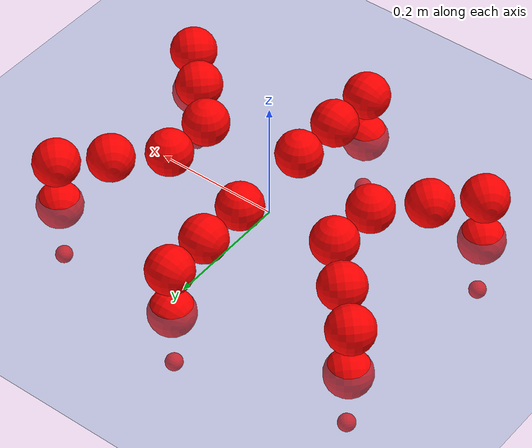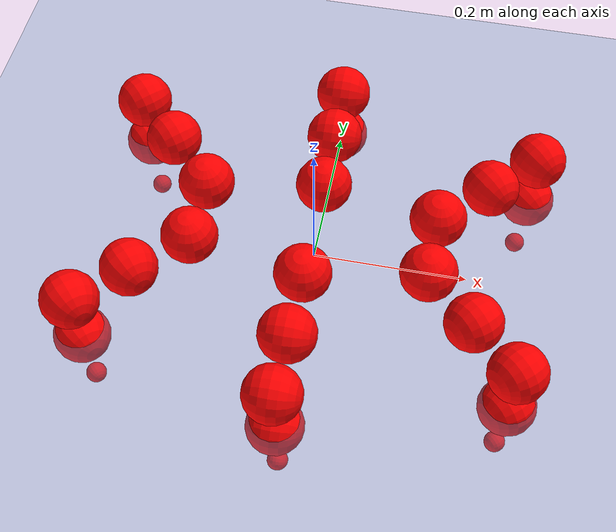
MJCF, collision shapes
<mujoco model="Golem">
  <compiler angle="radian" assetdir="assets" balanceinertia="true" inertiafromgeom="false"/>

  <option timestep="0.005" density="1.2" viscosity="2e-05"/>

  <size nkey="1"/>

  <visual>
    <quality shadowsize="8192"/>
    <map shadowclip="0.5"/>
  </visual>

  <default>
    <default class="/">
      <joint armature="0.01" damping="0.01" frictionloss="0.01"/>
      <geom contype="0" conaffinity="0" group="1" solref="-1000 -80"/>
      <site size="0.01 0.005 0.005" group="5"/>
      <general forcelimited="true" biastype="affine" gainprm="25" biasprm="0 -25 -0.5"/>
      <default class="visual">
        <geom type="mesh" group="2"/>
      </default>
      <default class="collision">
        <geom group="3"/>
      </default>
      <default class="foot">
        <geom size="0.01 0 0" condim="6" group="4" priority="1" solimp="0.015 1 0.01"/>
      </default>
      <default class="reward_collision_sphere">
        <geom group="5" rgba="1 0 0 1"/>
      </default>
    </default>
  </default>

  <asset>
    <texture type="skybox" colorspace="auto" name="//unnamed_texture_0" builtin="gradient" rgb1="0.95 0.95 0.95" rgb2="0.95 0.95 0.95" width="100" height="600"/>
    <texture type="2d" colorspace="auto" name="texplane" builtin="checker" rgb1="0.345 0.575 0.748" rgb2="0.345 0.575 0.748" markrgb="1 1 1" width="512" height="512"/>
    <material name="MatPlane" class="/" texture="texplane" texuniform="true" texrepeat="2 2" specular="0.9"/>
    <mesh name="body" class="/" file="body.stl" scale="0.001 0.001 0.001"/>
    <mesh name="coxa" class="/" file="coxa.stl" scale="0.001 0.001 0.001"/>
    <mesh name="femur" class="/" file="femur.stl" scale="0.001 0.001 0.001"/>
    <mesh name="tibia" class="/" file="tibia.stl" scale="0.001 0.001 0.001"/>
    <mesh name="tarsus" class="/" file="tarsus.stl" scale="0.001 0.001 0.001"/>
  </asset>

  <worldbody>
    <geom name="floor" class="/" size="100 100 0.125" type="plane" group="0" material="MatPlane"/>
    <light name="toplight_shadow" class="/" pos="0 0 5" dir="0.0990148 0.0990148 -0.990148" type="directional" ambient="0.04 0.04 0.04" diffuse="0.55 0.55 0.55" specular="0.12 0.12 0.12"/>
    <light name="toplight_fill" class="/" pos="0 0 5" dir="0.0990148 0.0990148 -0.990148" type="directional" castshadow="false" ambient="0.04 0.04 0.04" diffuse="0.3 0.3 0.3" specular="0.08 0.08 0.08"/>
    <body name="trunk" pos="0.000421629 -0.000302846 -0.000261196" quat="1 -1.46951e-05 6.01899e-05 -6.61961e-05">
      <inertial pos="-0.000448935 -0.0004374 -0.00370571" quat="0.999991 0.00202451 -0.000232939 0.00374746" mass="2.78177" diaginertia="0.00839446 0.0023182 0.0112068"/>
      <joint name="//unnamed_joint_0" type="free"/>
      <geom name="//unnamed_geom_1" class="/" pos="0 0 0.0655257" quat="1 0 0 0" type="mesh" rgba="0.9 0.9 0.9 1" mesh="body"/>
      <site name="imu" class="/" pos="0.124268 0.00122194 0.104618" size="0.00913365"/>
      <camera name="track" class="/" pos="0 -1.49726 0" quat="0.707107 0.707107 0 0" mode="trackcom"/>
      <camera name="ego_camera" class="/" pos="0.125791 0 0.102384" quat="-0.5 -0.5 0.5 0.5"/>
      <body name="coxa_RR" pos="-0.172148 -0.0621015 0.0650726" quat="0.382666 1.12364e-05 -7.65695e-05 -0.923887">
        <inertial pos="-0.000201191 -0.00015558 0.000114103" quat="0.999998 -0.00146559 -0.00157058 -4.26556e-05" mass="0.150707" diaginertia="0.00849496 0.00231888 0.0111849"/>
        <joint name="coxa_joint_RR" class="/" pos="0 0 0" axis="0.0004468 0.000196016 -1" range="-3.13712 3.15567" armature="0.00947094" damping="0.00943499" frictionloss="0.00910512"/>
        <geom name="//unnamed_geom_2" class="/" type="mesh" rgba="0.2 0.2 0.2 1" mesh="coxa"/>
        <geom name="//unnamed_geom_3" class="reward_collision_sphere" size="0.0365346" pos="-0.0290287 0 0"/>
        <body name="femur_RR" pos="0.0571741 0.000351769 0.000238489" quat="0.499635 -0.500341 0.500151 0.499872">
          <inertial pos="-0.000464544 -0.00077044 0.000644925" quat="1 -8.33344e-06 2.61847e-05 3.474e-05" mass="0.152551" diaginertia="0.00852501 0.00236483 0.0112835"/>
          <joint name="femur_joint_RR" class="/" pos="0 0 0" axis="2.58983e-05 -6.86981e-06 -1" range="-3.12941 3.14178" armature="0.00953923" damping="0" frictionloss="0.00873776"/>
          <geom name="//unnamed_geom_4" class="/" type="mesh" rgba="0.9 0.9 0.9 1" mesh="femur"/>
          <geom name="//unnamed_geom_5" class="reward_collision_sphere" size="0.0365346"/>
          <body name="tibia_RR" pos="0.000715755 -0.0812892 0.000524231" quat="-0.000254333 1 3.8145e-05 -0.000179658">
            <inertial pos="0.000646259 0.000912613 -4.30768e-05" quat="0.999992 5.98418e-05 -0.00377734 0.00139907" mass="0.152529" diaginertia="0.008527 0.00235033 0.0112032"/>
            <joint name="tibia_joint_RR" class="/" pos="0 0 0" axis="-0.0043786 0.00172716 0.999989" range="-3.14124 3.14065" armature="0.00948731" damping="0.00157056" frictionloss="0.00903082"/>
            <geom name="//unnamed_geom_6" class="/" type="mesh" rgba="0.2 0.2 0.2 1" mesh="tibia"/>
            <geom name="//unnamed_geom_7" class="reward_collision_sphere" size="0.0365346"/>
            <body name="tarsus_RR" pos="0.0845381 0.000105814 -0.000305886" quat="1 -2.85141e-05 -0.000151003 -6.15941e-05">
              <inertial pos="0.0586207 0.000194008 0.000792824" quat="0.500101 0.499884 0.49999 0.500025" mass="0.153231" diaginertia="0.0084916 0.00234105 0.0113003"/>
              <joint name="tarsus_joint_RR" class="/" pos="0 0 0" axis="-0.00075006 0.00287337 0.999996" range="-3.13804 3.13568" armature="0.00871677" damping="0.00855788" frictionloss="0.00879683"/>
              <geom name="//unnamed_geom_8" class="/" type="mesh" rgba="0.9 0.9 0.9 1" mesh="tarsus"/>
              <geom name="foot_1" class="foot" size="0.00929346" pos="0.108374 0 0" quat="0 -0.707107 0 0.707107"/>
              <geom name="//unnamed_geom_10" class="reward_collision_sphere" size="0.0365346"/>
              <geom name="//unnamed_geom_11" class="reward_collision_sphere" size="0.0137005" pos="0.104019 0 0"/>
              <site name="foot_1" class="foot" pos="0.108374 0 0" quat="0 -0.707107 0 0.707107" size="0.00913365"/>
            </body>
          </body>
        </body>
      </body>
      <body name="coxa_RM" pos="-0.000660579 -0.0999446 0.0660783" quat="0.707198 4.28754e-05 -0.000159137 -0.707015">
        <inertial pos="0.000633991 9.23376e-05 0.000586616" quat="1 0.000242718 6.66905e-05 -5.54599e-05" mass="0.152765" diaginertia="0.00836056 0.00234985 0.0112413"/>
        <joint name="coxa_joint_RM" class="/" pos="0 0 0" axis="3.89835e-05 1.27975e-05 -1" stiffness="0.00025801" range="-3.14915 3.14039" armature="0.00915341" damping="0.00978328" frictionloss="0.00911185"/>
        <geom name="//unnamed_geom_12" class="/" type="mesh" rgba="0.2 0.2 0.2 1" mesh="coxa"/>
        <geom name="//unnamed_geom_13" class="reward_collision_sphere" size="0.0365346" pos="-0.0290287 0 0"/>
        <body name="femur_RM" pos="0.0574759 -0.00127621 -0.000762137" quat="0.499914 -0.500004 0.500107 0.499975">
          <inertial pos="-0.000235488 7.70458e-05 -0.000105332" quat="0.999998 0.00017092 0.00124125 -0.00142661" mass="0.151278" diaginertia="0.00841601 0.00235318 0.0111947"/>
          <joint name="femur_joint_RM" class="/" pos="0 0 0" axis="0.00100471 0.00147875 -0.999998" range="-3.14284 3.14112" armature="0.00907109" damping="0.0114986" frictionloss="0.00917543"/>
          <geom name="//unnamed_geom_14" class="/" type="mesh" rgba="0.9 0.9 0.9 1" mesh="femur"/>
          <geom name="//unnamed_geom_15" class="reward_collision_sphere" size="0.0365346"/>
          <body name="tibia_RM" pos="0.000775944 -0.0803212 -0.000720664" quat="1.64362e-05 1 3.85927e-05 -0.000142566">
            <inertial pos="8.60372e-05 -0.000227245 -3.55181e-06" quat="0.999997 0.00176026 0.00138728 -0.000777241" mass="0.152832" diaginertia="0.00850551 0.00235541 0.0111718"/>
            <joint name="tibia_joint_RM" class="/" pos="0 0 0" axis="0.00229199 0.00103372 0.999997" range="-3.15707 3.12195" armature="0.00895914" damping="0" frictionloss="0.00901435"/>
            <geom name="//unnamed_geom_16" class="/" type="mesh" rgba="0.2 0.2 0.2 1" mesh="tibia"/>
            <geom name="//unnamed_geom_17" class="reward_collision_sphere" size="0.0365346"/>
            <body name="tarsus_RM" pos="0.0848176 -0.000222786 -0.000333099" quat="1 0.00032952 0.000245243 2.96137e-05">
              <inertial pos="0.0577496 0.000458848 0.000295676" quat="0.500153 0.499917 0.499648 0.500282" mass="0.153036" diaginertia="0.00857503 0.00239011 0.0114463"/>
              <joint name="tarsus_joint_RM" class="/" pos="0 0 0" axis="0.00215507 -0.00455873 0.999987" stiffness="0.000289057" range="-3.14323 3.13056" armature="0.00875934" damping="0.00419795" frictionloss="0.00909567"/>
              <geom name="//unnamed_geom_18" class="/" type="mesh" rgba="0.9 0.9 0.9 1" mesh="tarsus"/>
              <geom name="foot_2" class="foot" size="0.00912901" pos="0.108374 0 0" quat="0 -0.707107 0 0.707107"/>
              <geom name="//unnamed_geom_20" class="reward_collision_sphere" size="0.0365346"/>
              <geom name="//unnamed_geom_21" class="reward_collision_sphere" size="0.0137005" pos="0.104019 0 0"/>
              <site name="foot_2" class="foot" pos="0.108374 0 0" quat="0 -0.707107 0 0.707107" size="0.00913365"/>
            </body>
          </body>
        </body>
      </body>
      <body name="coxa_RF" pos="0.171179 -0.0615866 0.0659799" quat="0.92396 -0.000100263 -0.000338382 -0.38249">
        <inertial pos="0.000471379 0.000476721 -0.000168533" quat="0.999992 0.00264172 -0.00279227 -0.000529502" mass="0.154527" diaginertia="0.00866191 0.00235015 0.011489"/>
        <joint name="coxa_joint_RF" class="/" pos="0 0 0" axis="0.000386513 0.00567487 -0.999984" range="-3.12287 3.13786" armature="0.00948059" damping="0.00640939" frictionloss="0.00874024"/>
        <geom name="//unnamed_geom_22" class="/" type="mesh" rgba="0.2 0.2 0.2 1" mesh="coxa"/>
        <geom name="//unnamed_geom_23" class="reward_collision_sphere" size="0.0365346" pos="-0.0290287 0 0"/>
        <body name="femur_RF" pos="0.0574024 0.000963171 0.000426906" quat="0.499947 -0.50003 0.499989 0.500035">
          <inertial pos="0.000173203 0.000426044 7.6757e-05" quat="1 0.000101767 -1.05142e-05 0.000120154" mass="0.152164" diaginertia="0.00842424 0.0023239 0.0112724"/>
          <joint name="femur_joint_RF" class="/" pos="0 0 0" axis="-4.05242e-05 0.00122182 -0.999999" range="-3.14173 3.13717" armature="0.0088111" damping="0.0119643" frictionloss="0.00890186"/>
          <geom name="//unnamed_geom_24" class="/" type="mesh" rgba="0.9 0.9 0.9 1" mesh="femur"/>
          <geom name="//unnamed_geom_25" class="reward_collision_sphere" size="0.0365346"/>
          <body name="tibia_RF" pos="5.8221e-05 -0.0808193 -0.000228899" quat="-2.06034e-07 1 -1.08772e-05 1.23607e-05">
            <inertial pos="9.08519e-05 -0.0002215 5.14665e-07" quat="0.999999 -0.00112173 -0.000349485 0.000552124" mass="0.153589" diaginertia="0.00865377 0.00237589 0.011372"/>
            <joint name="tibia_joint_RF" class="/" pos="0 0 0" axis="-0.00184593 -0.00200369 0.999996" stiffness="0.00135985" range="-3.15624 3.13287" armature="0.00914537" damping="0" frictionloss="0.00876518"/>
            <geom name="//unnamed_geom_26" class="/" type="mesh" rgba="0.2 0.2 0.2 1" mesh="tibia"/>
            <geom name="//unnamed_geom_27" class="reward_collision_sphere" size="0.0365346"/>
            <body name="tarsus_RF" pos="0.0844996 0.000729542 0.0010345" quat="1 -4.72376e-05 -0.000484407 -8.45429e-05">
              <inertial pos="0.0581252 0.00101624 1.42556e-05" quat="0.50252 0.50027 0.49735 0.499847" mass="0.154384" diaginertia="0.00854226 0.00234271 0.0112868"/>
              <joint name="tarsus_joint_RF" class="/" pos="0 0 0" axis="-3.84039e-05 -1.22128e-05 1" range="-3.14932 3.13668" armature="0.00907894" damping="0.00891998" frictionloss="0.00934451"/>
              <geom name="//unnamed_geom_28" class="/" type="mesh" rgba="0.9 0.9 0.9 1" mesh="tarsus"/>
              <geom name="foot_3" class="foot" size="0.00901815" pos="0.108374 0 0" quat="0 -0.707107 0 0.707107"/>
              <geom name="//unnamed_geom_30" class="reward_collision_sphere" size="0.0365346"/>
              <geom name="//unnamed_geom_31" class="reward_collision_sphere" size="0.0137005" pos="0.104019 0 0"/>
              <site name="foot_3" class="foot" pos="0.108374 0 0" quat="0 -0.707107 0 0.707107" size="0.00913365"/>
            </body>
          </body>
        </body>
      </body>
      <body name="coxa_LR" pos="-0.171371 0.064488 0.0667726" quat="0.382629 -3.57632e-05 -0.000160546 0.923902">
        <inertial pos="3.97742e-05 -0.000273751 0.00133392" quat="1 -0.000727517 8.27194e-05 0.000339443" mass="0.154104" diaginertia="0.00842884 0.00236265 0.0112391"/>
        <joint name="coxa_joint_LR" class="/" pos="0 0 0" axis="0.00103296 0.0011457 -0.999999" range="-3.14235 3.12964" armature="0.00881524" damping="0.0106401" frictionloss="0.00916475"/>
        <geom name="//unnamed_geom_32" class="/" type="mesh" rgba="0.2 0.2 0.2 1" mesh="coxa"/>
        <geom name="//unnamed_geom_33" class="reward_collision_sphere" size="0.0365346" pos="-0.0290287 0 0"/>
        <body name="femur_LR" pos="0.0595645 -0.00226447 -0.00113183" quat="0.4999 -0.499794 0.50033 0.499976">
          <inertial pos="0.000162209 -0.000302891 -0.00012202" quat="1 0.000236688 -1.0255e-05 0.000123776" mass="0.151118" diaginertia="0.00834364 0.00232419 0.0111284"/>
          <joint name="femur_joint_LR" class="/" pos="0 0 0" axis="3.93409e-05 -1.18905e-05 1" range="-3.12244 3.15515" armature="0.00953349" damping="0.0103896" frictionloss="0.00937162"/>
          <geom name="//unnamed_geom_34" class="/" type="mesh" rgba="0.9 0.9 0.9 1" mesh="femur"/>
          <geom name="//unnamed_geom_35" class="reward_collision_sphere" size="0.0365346"/>
          <body name="tibia_LR" pos="0.000824446 -0.0822302 -0.000648144" quat="0.000110562 1 0.000114255 8.8948e-05">
            <inertial pos="2.54121e-05 0.000259862 7.39994e-06" quat="0.999995 -0.00184163 0.00255492 -0.000629914" mass="0.155509" diaginertia="0.00866373 0.00235483 0.0113323"/>
            <joint name="tibia_joint_LR" class="/" pos="0 0 0" axis="-0.00352974 7.29002e-05 -0.999994" range="-3.14206 3.14435" armature="0.00912279" damping="0.004996" frictionloss="0.00873467"/>
            <geom name="//unnamed_geom_36" class="/" type="mesh" rgba="0.2 0.2 0.2 1" mesh="tibia"/>
            <geom name="//unnamed_geom_37" class="reward_collision_sphere" size="0.0365346"/>
            <body name="tarsus_LR" pos="0.0858491 0.00177678 0.00135543" quat="1 0.000140427 -0.000397704 0.000228834">
              <inertial pos="0.0599546 -0.000248938 0.000818479" quat="0.500306 0.499099 0.500071 0.500523" mass="0.153834" diaginertia="0.00847716 0.00232359 0.0113017"/>
              <joint name="tarsus_joint_LR" class="/" pos="0 0 0" axis="-0.002647 -0.000997689 -0.999996" range="-3.12406 3.1424" armature="0.00937663" damping="0.0268788" frictionloss="0.00920739"/>
              <geom name="//unnamed_geom_38" class="/" type="mesh" rgba="0.9 0.9 0.9 1" mesh="tarsus"/>
              <geom name="foot_4" class="foot" size="0.0090768" pos="0.108374 0 0" quat="0.707107 0 -0.707107 0"/>
              <geom name="//unnamed_geom_40" class="reward_collision_sphere" size="0.0365346"/>
              <geom name="//unnamed_geom_41" class="reward_collision_sphere" size="0.0137005" pos="0.104019 0 0"/>
              <site name="foot_4" class="foot" pos="0.108374 0 0" quat="0.707107 0 -0.707107 0" size="0.00913365"/>
            </body>
          </body>
        </body>
      </body>
      <body name="coxa_LM" pos="-0.000539543 0.097993 0.0655038" quat="0.707141 -0.000148871 -0.000229597 0.707072">
        <inertial pos="-0.000629222 9.94288e-05 7.65227e-05" quat="0.999994 0.00299488 -0.00114428 0.00100019" mass="0.153962" diaginertia="0.00845144 0.00237231 0.011351"/>
        <joint name="coxa_joint_LM" class="/" pos="0 0 0" axis="-0.000220089 -1.91908e-05 -1" range="-3.14747 3.14807" armature="0.00915839" damping="0.00813445" frictionloss="0.00904998"/>
        <geom name="//unnamed_geom_42" class="/" type="mesh" rgba="0.2 0.2 0.2 1" mesh="coxa"/>
        <geom name="//unnamed_geom_43" class="reward_collision_sphere" size="0.0365346" pos="-0.0290287 0 0"/>
        <body name="femur_LM" pos="0.0547473 0.00115075 0.00012488" quat="0.499953 -0.500045 0.500028 0.499974">
          <inertial pos="-0.00101335 -0.000468939 0.000851432" quat="1 -0.000383239 0.000341837 0.00068082" mass="0.151226" diaginertia="0.00835899 0.00232999 0.0110549"/>
          <joint name="femur_joint_LM" class="/" pos="0 0 0" axis="0.00674411 0.000665229 0.999977" range="-3.13893 3.14136" armature="0.00919664" damping="0.00225787" frictionloss="0.0087349"/>
          <geom name="//unnamed_geom_44" class="/" type="mesh" rgba="0.9 0.9 0.9 1" mesh="femur"/>
          <geom name="//unnamed_geom_45" class="reward_collision_sphere" size="0.0365346"/>
          <body name="tibia_LM" pos="-0.000477192 -0.0778226 0.00165762" quat="-8.61668e-06 1 5.8908e-05 7.97113e-06">
            <inertial pos="-0.00123662 -0.000129045 -0.000110727" quat="1 9.22574e-05 5.26313e-05 -9.54004e-05" mass="0.150356" diaginertia="0.00837303 0.0023136 0.0110173"/>
            <joint name="tibia_joint_LM" class="/" pos="0 0 0" axis="0.0062134 0.00041885 -0.999981" range="-3.13755 3.13776" armature="0.00921237" damping="0.00430574" frictionloss="0.00911264"/>
            <geom name="//unnamed_geom_46" class="/" type="mesh" rgba="0.2 0.2 0.2 1" mesh="tibia"/>
            <geom name="//unnamed_geom_47" class="reward_collision_sphere" size="0.0365346"/>
            <body name="tarsus_LM" pos="0.0850493 -0.000280945 -0.000721612" quat="1 -9.18052e-06 -9.44122e-06 7.95412e-06">
              <inertial pos="0.0585542 -0.00106311 -0.000684434" quat="0.50244 0.498878 0.498686 0.499987" mass="0.153294" diaginertia="0.00844291 0.00233315 0.0112441"/>
              <joint name="tarsus_joint_LM" class="/" pos="0 0 0" axis="-0.00229396 0.0021276 -0.999995" range="-3.14156 3.13529" armature="0.00925758" damping="0.000884638" frictionloss="0.00913822"/>
              <geom name="//unnamed_geom_48" class="/" type="mesh" rgba="0.9 0.9 0.9 1" mesh="tarsus"/>
              <geom name="foot_5" class="foot" size="0.0090035" pos="0.108374 0 0" quat="0.707107 0 -0.707107 0"/>
              <geom name="//unnamed_geom_50" class="reward_collision_sphere" size="0.0365346"/>
              <geom name="//unnamed_geom_51" class="reward_collision_sphere" size="0.0137005" pos="0.104019 0 0"/>
              <site name="foot_5" class="foot" pos="0.108374 0 0" quat="0.707107 0 -0.707107 0" size="0.00913365"/>
            </body>
          </body>
        </body>
      </body>
      <body name="coxa_LF" pos="0.172505 0.0633145 0.0655544" quat="0.923864 3.96686e-05 8.04083e-06 0.382722">
        <inertial pos="1.09594e-05 -0.000116896 -0.000346856" quat="0.999998 0.000559565 0.00155997 0.00124007" mass="0.152518" diaginertia="0.00841249 0.00233215 0.0112677"/>
        <joint name="coxa_joint_LF" class="/" pos="0 0 0" axis="-6.45456e-06 -0.000636303 -1" range="-3.12987 3.13736" armature="0.00911524" damping="0" frictionloss="0.00940319"/>
        <geom name="//unnamed_geom_52" class="/" type="mesh" rgba="0.2 0.2 0.2 1" mesh="coxa"/>
        <geom name="//unnamed_geom_53" class="reward_collision_sphere" size="0.0365346" pos="-0.0290287 0 0"/>
        <body name="femur_LF" pos="0.0573034 0.000346913 -0.000563992" quat="0.499923 -0.500057 0.500001 0.500019">
          <inertial pos="-0.000252607 -0.000206271 -0.000128409" quat="0.99999 0.00109872 -0.00311611 -0.00286491" mass="0.154067" diaginertia="0.00856318 0.00233869 0.0112625"/>
          <joint name="femur_joint_LF" class="/" pos="0 0 0" axis="-0.00268323 0.000775554 0.999996" range="-3.13942 3.13702" armature="0.00905854" damping="0.00264326" frictionloss="0.00897987"/>
          <geom name="//unnamed_geom_54" class="/" type="mesh" rgba="0.9 0.9 0.9 1" mesh="femur"/>
          <geom name="//unnamed_geom_55" class="reward_collision_sphere" size="0.0365346"/>
          <body name="tibia_LF" pos="-0.0004063 -0.0801 0.000278189" quat="4.26439e-05 1 -5.84476e-05 1.07458e-05">
            <inertial pos="0.000345483 0.000313294 3.14804e-05" quat="1 -0.00012475 -0.000492672 0.00015618" mass="0.150462" diaginertia="0.0084349 0.00235712 0.011261"/>
            <joint name="tibia_joint_LF" class="/" pos="0 0 0" axis="0.0018857 -0.00116549 -0.999998" range="-3.12485 3.13041" armature="0.00919143" damping="0" frictionloss="0.00911728"/>
            <geom name="//unnamed_geom_56" class="/" type="mesh" rgba="0.2 0.2 0.2 1" mesh="tibia"/>
            <geom name="//unnamed_geom_57" class="reward_collision_sphere" size="0.0365346"/>
            <body name="tarsus_LF" pos="0.0848063 -0.000272827 -0.000736783" quat="1 -0.000104534 0.000301953 6.27972e-05">
              <inertial pos="0.0580313 4.69513e-05 0.000253168" quat="0.499959 0.500042 0.500107 0.499892" mass="0.155273" diaginertia="0.00862524 0.00239758 0.0114066"/>
              <joint name="tarsus_joint_LF" class="/" pos="0 0 0" axis="-0.000701063 -0.00091035 -0.999999" range="-3.13581 3.15055" armature="0.00900822" damping="0.0145125" frictionloss="0.00940596"/>
              <geom name="//unnamed_geom_58" class="/" type="mesh" rgba="0.9 0.9 0.9 1" mesh="tarsus"/>
              <geom name="foot_6" class="foot" size="0.00926226" pos="0.108374 0 0" quat="0.707107 0 -0.707107 0"/>
              <geom name="//unnamed_geom_60" class="reward_collision_sphere" size="0.0365346"/>
              <geom name="//unnamed_geom_61" class="reward_collision_sphere" size="0.0137005" pos="0.104019 0 0"/>
              <site name="foot_6" class="foot" pos="0.108374 0 0" quat="0.707107 0 -0.707107 0" size="0.00913365"/>
            </body>
          </body>
        </body>
      </body>
    </body>
  </worldbody>

  <contact>
    <pair class="/" geom1="floor" geom2="foot_1" name="//unnamed_contact_0"/>
    <pair class="/" geom1="floor" geom2="foot_2" name="//unnamed_contact_1"/>
    <pair class="/" geom1="floor" geom2="foot_3" name="//unnamed_contact_2"/>
    <pair class="/" geom1="floor" geom2="foot_4" name="//unnamed_contact_3"/>
    <pair class="/" geom1="floor" geom2="foot_5" name="//unnamed_contact_4"/>
    <pair class="/" geom1="floor" geom2="foot_6" name="//unnamed_contact_5"/>
  </contact>

  <actuator>
    <general name="coxa_joint_RR" class="/" joint="coxa_joint_RR" forcerange="-6.45252 6.45252" gainprm="22.1982" biasprm="0 -22.1982 -0.47773"/>
    <general name="femur_joint_RR" class="/" joint="femur_joint_RR" forcerange="-6.46449 6.46449" gainprm="22.1982" biasprm="0 -22.1982 -0.47773"/>
    <general name="tibia_joint_RR" class="/" joint="tibia_joint_RR" forcerange="-6.85906 6.85906" gainprm="22.1982" biasprm="0 -22.1982 -0.47773"/>
    <general name="tarsus_joint_RR" class="/" joint="tarsus_joint_RR" forcerange="-6.81791 6.81791" gainprm="22.1982" biasprm="0 -22.1982 -0.47773"/>
    <general name="coxa_joint_RM" class="/" joint="coxa_joint_RM" forcerange="-6.6805 6.6805" gainprm="22.1982" biasprm="0 -22.1982 -0.47773"/>
    <general name="femur_joint_RM" class="/" joint="femur_joint_RM" forcerange="-6.76142 6.76142" gainprm="22.1982" biasprm="0 -22.1982 -0.47773"/>
    <general name="tibia_joint_RM" class="/" joint="tibia_joint_RM" forcerange="-6.62089 6.62089" gainprm="22.1982" biasprm="0 -22.1982 -0.47773"/>
    <general name="tarsus_joint_RM" class="/" joint="tarsus_joint_RM" forcerange="-6.72446 6.72446" gainprm="22.1982" biasprm="0 -22.1982 -0.47773"/>
    <general name="coxa_joint_RF" class="/" joint="coxa_joint_RF" forcerange="-6.60873 6.60873" gainprm="22.1982" biasprm="0 -22.1982 -0.47773"/>
    <general name="femur_joint_RF" class="/" joint="femur_joint_RF" forcerange="-6.84164 6.84164" gainprm="22.1982" biasprm="0 -22.1982 -0.47773"/>
    <general name="tibia_joint_RF" class="/" joint="tibia_joint_RF" forcerange="-6.68449 6.68449" gainprm="22.1982" biasprm="0 -22.1982 -0.47773"/>
    <general name="tarsus_joint_RF" class="/" joint="tarsus_joint_RF" forcerange="-6.61305 6.61305" gainprm="22.1982" biasprm="0 -22.1982 -0.47773"/>
    <general name="coxa_joint_LR" class="/" joint="coxa_joint_LR" forcerange="-6.69497 6.69497" gainprm="22.1982" biasprm="0 -22.1982 -0.47773"/>
    <general name="femur_joint_LR" class="/" joint="femur_joint_LR" forcerange="-6.7197 6.7197" gainprm="22.1982" biasprm="0 -22.1982 -0.47773"/>
    <general name="tibia_joint_LR" class="/" joint="tibia_joint_LR" forcerange="-6.80408 6.80408" gainprm="22.1982" biasprm="0 -22.1982 -0.47773"/>
    <general name="tarsus_joint_LR" class="/" joint="tarsus_joint_LR" forcerange="-6.68225 6.68225" gainprm="22.1982" biasprm="0 -22.1982 -0.47773"/>
    <general name="coxa_joint_LM" class="/" joint="coxa_joint_LM" forcerange="-6.60498 6.60498" gainprm="22.1982" biasprm="0 -22.1982 -0.47773"/>
    <general name="femur_joint_LM" class="/" joint="femur_joint_LM" forcerange="-6.70128 6.70128" gainprm="22.1982" biasprm="0 -22.1982 -0.47773"/>
    <general name="tibia_joint_LM" class="/" joint="tibia_joint_LM" forcerange="-6.66295 6.66295" gainprm="22.1982" biasprm="0 -22.1982 -0.47773"/>
    <general name="tarsus_joint_LM" class="/" joint="tarsus_joint_LM" forcerange="-6.70502 6.70502" gainprm="22.1982" biasprm="0 -22.1982 -0.47773"/>
    <general name="coxa_joint_LF" class="/" joint="coxa_joint_LF" forcerange="-6.69138 6.69138" gainprm="22.1982" biasprm="0 -22.1982 -0.47773"/>
    <general name="femur_joint_LF" class="/" joint="femur_joint_LF" forcerange="-6.58971 6.58971" gainprm="22.1982" biasprm="0 -22.1982 -0.47773"/>
    <general name="tibia_joint_LF" class="/" joint="tibia_joint_LF" forcerange="-6.53429 6.53429" gainprm="22.1982" biasprm="0 -22.1982 -0.47773"/>
    <general name="tarsus_joint_LF" class="/" joint="tarsus_joint_LF" forcerange="-6.6192 6.6192" gainprm="22.1982" biasprm="0 -22.1982 -0.47773"/>
  </actuator>

  <sensor>
    <gyro site="imu" name="imu_angular_velocity"/>
    <velocimeter site="imu" name="imu_linear_velocity"/>
    <framelinvel objtype="site" objname="foot_1" name="foot_1_global_linear_velocity"/>
    <framelinvel objtype="site" objname="foot_2" name="foot_2_global_linear_velocity"/>
    <framelinvel objtype="site" objname="foot_3" name="foot_3_global_linear_velocity"/>
    <framelinvel objtype="site" objname="foot_4" name="foot_4_global_linear_velocity"/>
    <framelinvel objtype="site" objname="foot_5" name="foot_5_global_linear_velocity"/>
    <framelinvel objtype="site" objname="foot_6" name="foot_6_global_linear_velocity"/>
  </sensor>

  <keyframe>
    <key name="home" qpos="0 0 0.1457 1 0 0 0 0 0 0 0 0 0 0 0 0 0 0 0 0 0 0 0 0 0 0 0 0 0 0 0"/>
  </keyframe>
</mujoco>
